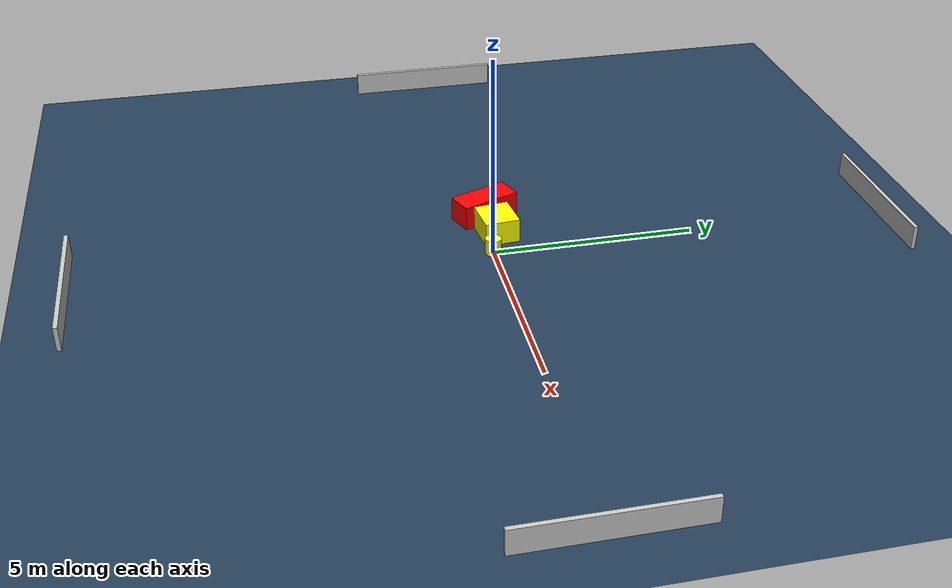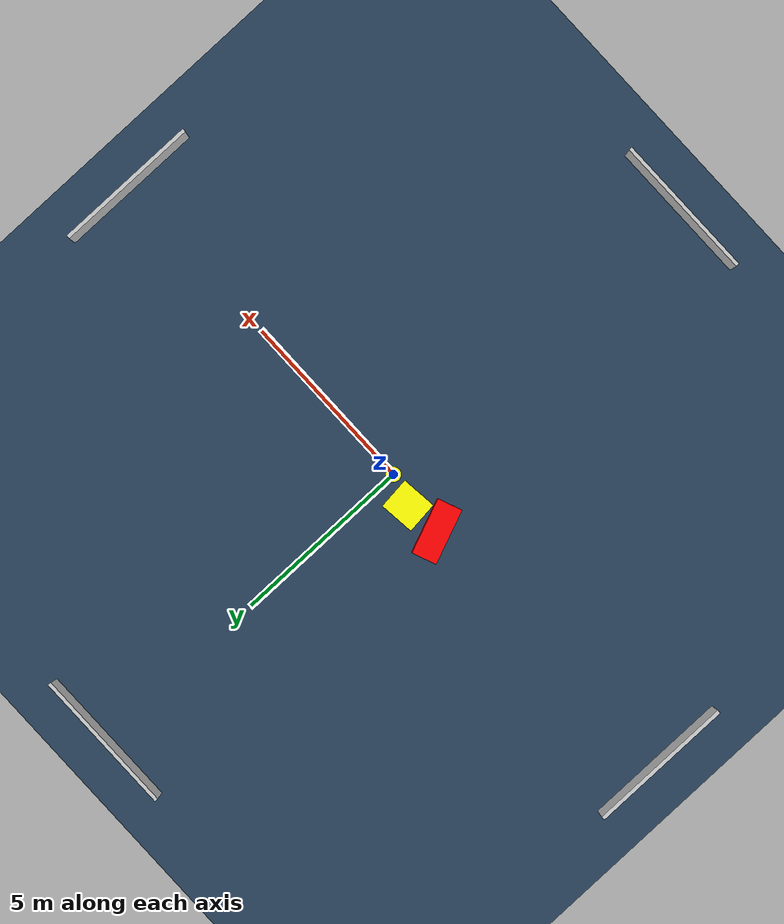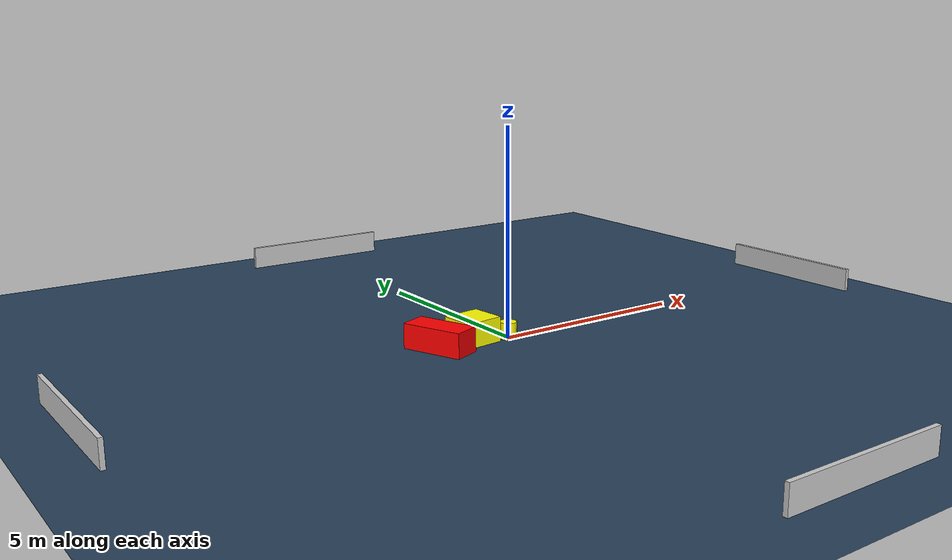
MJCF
<?xml version="1.0" ?>
<mujoco model="generated_environment">
  <option timestep="0.01" integrator="RK4" cone="elliptic"/>
  <default>
    <geom density="1"/>
  </default>
  <asset>
    <texture builtin="gradient" height="3072" name="skybox" rgb1="0.3 0.5 0.7" rgb2="0 0 0" type="skybox" width="512"/>
    <texture builtin="checker" height="300" name="groundplane" rgb1="0.2 0.3 0.4" rgb2="0.1 0.2 0.3" type="2d" width="300"/>
    <material name="groundplane" reflectance="0.2" texrepeat="5 5" texture="groundplane"/>
  </asset>
  <worldbody>
    <light dir="0 0 -1" directional="true" pos="0 0 1.5"/>
    <geom condim="3" friction="0.5 0.005 0.001" material="groundplane" name="floor" pos="0 0 0" size="0 0 0.05" type="plane"/>
    <body name="walls">
      <geom name="wall_1" condim="4" pos="-10.0 0.0 0.3" rgba="0.800000011920929 0.800000011920929 0.800000011920929 1.0" size="0.05 2.0 0.3" type="box"/>
      <geom name="wall_2" condim="4" pos="10.0 0.0 0.3" rgba="0.800000011920929 0.800000011920929 0.800000011920929 1.0" size="0.05 2.0 0.3" type="box"/>
      <geom name="wall_3" condim="4" pos="0.0 -10.0 0.3" rgba="0.800000011920929 0.800000011920929 0.800000011920929 1.0" size="2.0 0.05 0.3" type="box"/>
      <geom name="wall_4" condim="4" pos="0.0 10.0 0.3" rgba="0.800000011920929 0.800000011920929 0.800000011920929 1.0" size="2.0 0.05 0.3" type="box"/>
    </body>
    <body name="robot">
      <joint name="joint_x" type="slide" pos="0 0 0" axis="1 0 0"/>
      <joint name="joint_y" type="slide" pos="0 0 0" axis="0 1 0"/>
      <geom name="robot" type="cylinder" pos="0.0 0.0 0.2" size="0.2 0.2 0.0" mass="5.0" friction="1.0 0.005 0.0001" condim="4" rgba="1.0 1.0 0.0 1.0"/>
    </body>
    <body name="obstacle_1_movable">
      <geom name="obstacle_1_movable" condim="4" pos="-0.8292889049986751 0.2682177188894581 0.3" euler="0 0 186.25595777835784" friction="0.0 0.005 0.001" rgba="1.0 1.0 0.0 1.0" size="0.4797895647708815 0.4356180384750432 0.3" type="box" mass="0.1"/>
      <joint type="free"/>
    </body>
    <body name="obstacle_2_static">
      <geom name="obstacle_2_static" condim="4" pos="-1.8116429338904363 0.1666469777420128 0.3" euler="0 0 21.75590018196045" friction="0.0 0.005 0.001" rgba="1.0 0.0 0.0 1.0" size="0.3386364713525374 0.7627307517284225 0.3" type="box"/>
    </body>
  </worldbody>
  <actuator>
    <motor name="actuator_x" joint="joint_x" gear="1" ctrlrange="-1 1"/>
    <motor name="actuator_y" joint="joint_y" gear="1" ctrlrange="-1 1"/>
  </actuator>
</mujoco>
